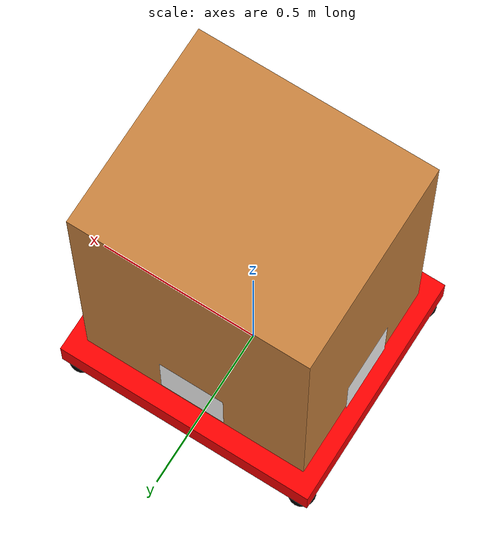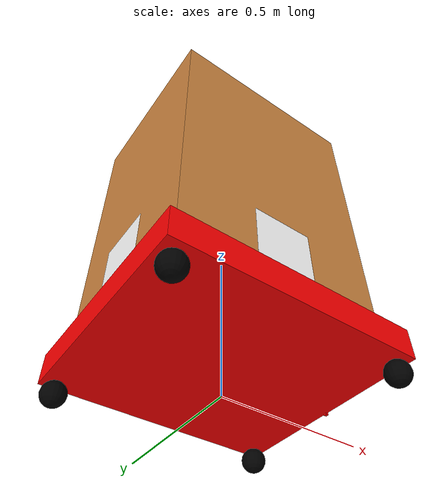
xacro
<?xml version="1.0"?>
<robot xmlns:xacro="http://ros.org/wiki/xacro" name="mobidik" >

    <xacro:arg name="namespace" default="ropod"/>
    <xacro:property name="namespace" value="$(arg namespace)"/>

    <xacro:property name="base_length" value="0.8" />
    <xacro:property name="base_width" value="0.72" />
    <xacro:property name="base_thickness" value="0.1" />
    <xacro:property name="cargo_length" value="0.7" />
    <xacro:property name="cargo_width" value="0.6" />
    <xacro:property name="cargo_height" value="1.0" />
    <xacro:property name="wheel_radius" value="0.04" />
    <xacro:property name="marker_length" value="0.2" />
    <xacro:property name="wheel_mass" value="1.0" />
    <xacro:property name="base_mass" value="8.0" />
    <xacro:property name="inertia_base" value="0.5" />
    <xacro:property name="inertia_wheels" value="0.001" />

    <material name="red">
        <color rgba="1.0 0.0 0.0 1.0"/>
    </material>

    <material name="black">
        <color rgba="0.0 0.0 0.0 1.0"/>
    </material>

    <material name="brown">
        <color rgba="0.8 0.52 0.25 1.0"/>
    </material>

    <material name="white">
        <color rgba="1.0 1.0 1.0 1.0"/>
    </material>

    <xacro:macro name="sphere_inertia" params="mass radius">
        <inertial>
            <mass value="${mass}" />
            <inertia ixx="${(mass*0.4)*(radius*radius)}"
                     iyy="${(mass*0.4)*(radius*radius)}"
                     iyz="0.0" ixy="0.0" ixz="0.0"
                     izz="${(mass*0.4)*(radius*radius)}" />
        </inertial>
    </xacro:macro>

    <xacro:macro name="cart_wheel" params="name parent *origin mass radius material_name">
        <joint name="${name}_joint" type="fixed">
            <xacro:insert_block name="origin" />
            <parent link="${parent}_link"/>
            <child link="${name}_link"/>
        </joint>
        <link name="${name}_link">
            <visual>
                <geometry>
                    <sphere radius="${radius}" />
                </geometry>
                <material name="${material_name}"/>
            </visual>
            <collision>
                <geometry>
                    <sphere radius="${radius}" />
                </geometry>
            </collision>
            <xacro:sphere_inertia mass="${mass}" radius="${radius}" />
        </link>
        <gazebo reference="${name}_link">
            <material>Gazebo/Black</material>
        </gazebo>
    </xacro:macro>

    <xacro:macro name="aruco_marker" params="name parent *origin length gazebo_material_name">
        <joint name="${name}_joint" type="fixed">
            <xacro:insert_block name="origin" />
            <parent link="${parent}_link"/>
            <child link="${name}_link"/>
        </joint>
        <link name="${name}_link">
            <visual>
                <geometry>
                    <box size="0.0001 ${marker_length} ${marker_length}"/>
                </geometry>
                <material name="white"/>
            </visual>
            <collision>
                <geometry>
                    <box size="0.0001 ${marker_length} ${marker_length}"/>
                </geometry>
            </collision>
        </link>
        <gazebo reference="${name}_link">
            <material>${gazebo_material_name}</material>
        </gazebo>
    </xacro:macro>

    <link name="base_link" />

    <joint name="base_body_joint" type="fixed">
        <origin xyz="0.0 0.0 ${wheel_radius*2 + base_thickness*0.5}" rpy="0 0 0"/>
        <parent link="base_link"/>
        <child link="base_body_link"/>
    </joint>

    <link name="base_body_link">
        <visual>
            <geometry>
                <box size="${base_length} ${base_width} ${base_thickness}"/>
            </geometry>
            <origin xyz="0.0 0.0 0.0" rpy="0.0 0.0 0.0" />
            <material name="red"/>
        </visual>
        <collision>
            <geometry>
                <box size="${base_length} ${base_width} ${base_thickness}"/>
            </geometry>
            <origin xyz="0.0 0.0 0.0" rpy="0.0 0.0 0.0" />
        </collision>
        <inertial>
          <mass value="${base_mass}"/>
          <inertia ixx="${inertia_base}" ixy="0.0" ixz="0.0" iyy="${inertia_base}" iyz="0.0" izz="${inertia_base}"/>
        </inertial>
    </link>

    <gazebo reference="base_body_link">
        <material>Gazebo/Red</material>
    </gazebo>

    <!-- WHEELS -->
    <xacro:cart_wheel name="left_rear_wheel" parent="base_body" mass="${wheel_mass}"
                       radius="${wheel_radius}" material_name="black">
        <origin xyz="${-base_length*0.5 + wheel_radius} ${base_width*0.5 - wheel_radius} ${-base_thickness*0.5 - wheel_radius}" rpy="0 0 0"/>
    </xacro:cart_wheel>

    <xacro:cart_wheel name="right_rear_wheel" parent="base_body" mass="${wheel_mass}"
                       radius="${wheel_radius}" material_name="black">
        <origin xyz="${-base_length*0.5 + wheel_radius} ${-base_width*0.5 + wheel_radius} ${-base_thickness*0.5 - wheel_radius}" rpy="0 0 0"/>
    </xacro:cart_wheel>

    <xacro:cart_wheel name="left_front_wheel" parent="base_body" mass="${wheel_mass}"
                       radius="${wheel_radius}" material_name="black">
        <origin xyz="${base_length*0.5 - wheel_radius} ${base_width*0.5 - wheel_radius} ${-base_thickness*0.5 - wheel_radius}" rpy="0 0 0"/>
    </xacro:cart_wheel>

    <xacro:cart_wheel name="right_front_wheel" parent="base_body" mass="${wheel_mass}"
                       radius="${wheel_radius}" material_name="black">
        <origin xyz="${base_length*0.5 - wheel_radius} ${-base_width*0.5 + wheel_radius} ${-base_thickness*0.5 - wheel_radius}" rpy="0 0 0"/>
    </xacro:cart_wheel>

    <!-- GRIPPER -->
    <joint name="gripping_joint" type="fixed">
        <origin xyz="${base_length*0.5} 0.0 ${wheel_radius*2}" rpy="0 0 0"/>
        <parent link="base_link"/>
        <child link="gripping_link"/>
    </joint>

    <link name="gripping_link">
        <visual>
            <geometry>
                <box size="${0.01} ${0.01} ${0.01}"/>
            </geometry>
            <origin xyz="0.0 0.0 0.0" rpy="0.0 0.0 0.0" />
            <material name="red"/>
        </visual>
        <collision>
            <geometry>
                <box size="${0.01} ${0.01} ${0.01}"/>
            </geometry>
            <origin xyz="0.0 0.0 0.0" rpy="0.0 0.0 0.0" />
        </collision>
    </link>

    <!-- CARGO -->
    <joint name="cargo_joint" type="fixed">
        <origin xyz="0.0 0.0 ${cargo_height*0.5 + base_thickness*0.5}" rpy="0 0 0"/>
        <parent link="base_body_link"/>
        <child link="cargo_link"/>
    </joint>

    <link name="cargo_link">
        <visual>
            <geometry>
                <box size="${cargo_length} ${cargo_width} ${cargo_height}"/>
            </geometry>
            <material name="brown"/>
        </visual>
        <collision>
            <geometry>
                <box size="${cargo_length} ${cargo_width} ${cargo_height}"/>
            </geometry>
        </collision>
    </link>

    <gazebo reference="cargo_link">
        <material>Gazebo/WoodPallet</material>
    </gazebo>

    <!-- ARUCO MARKERS -->
    <xacro:aruco_marker name="front_aruco" parent="base" length="${marker_length}" gazebo_material_name="Marker0">
        <origin xyz="${(cargo_length*0.5) + 0.01} 0.0 ${wheel_radius*2 + base_thickness + marker_length*0.5 + 0.05}" rpy="0 0 0"/>
    </xacro:aruco_marker>

    <xacro:aruco_marker name="left_aruco" parent="base" length="${marker_length}" gazebo_material_name="Marker1">
        <origin xyz="0.0 ${(cargo_width*0.5) + 0.01} ${wheel_radius*2 + base_thickness + marker_length*0.5 + 0.05}" rpy="0 0 ${pi/2}"/>
    </xacro:aruco_marker>

    <xacro:aruco_marker name="rear_aruco" parent="base" length="${marker_length}" gazebo_material_name="Marker2">
        <origin xyz="${-(cargo_length*0.5) - 0.01} 0.0 ${wheel_radius*2 + base_thickness + marker_length*0.5 + 0.05}" rpy="0 0 ${pi}"/>
    </xacro:aruco_marker>

    <xacro:aruco_marker name="right_aruco" parent="base" length="${marker_length}" gazebo_material_name="Marker3">
        <origin xyz="0.0 ${-(cargo_width*0.5) - 0.01} ${wheel_radius*2 + base_thickness + marker_length*0.5 + 0.05}" rpy="0 0 ${-pi/2}"/>
    </xacro:aruco_marker>

</robot>
